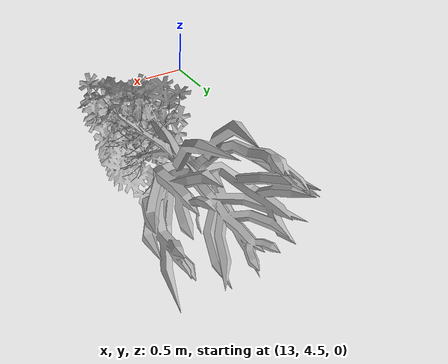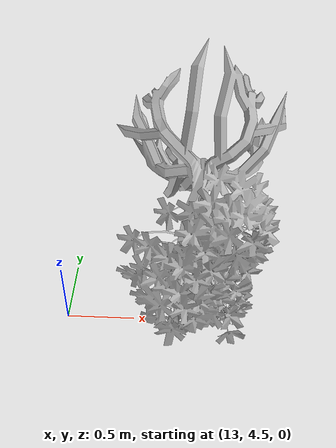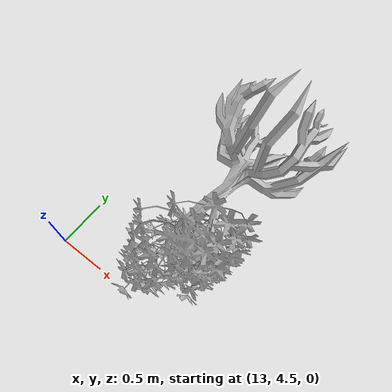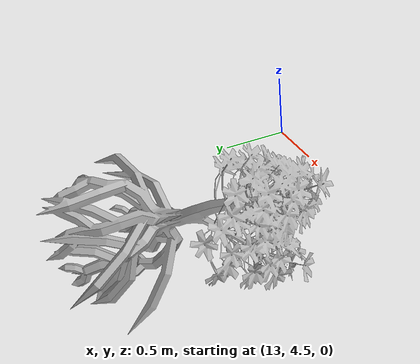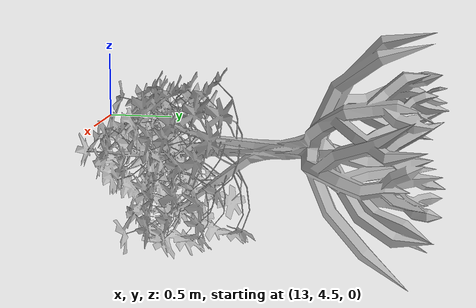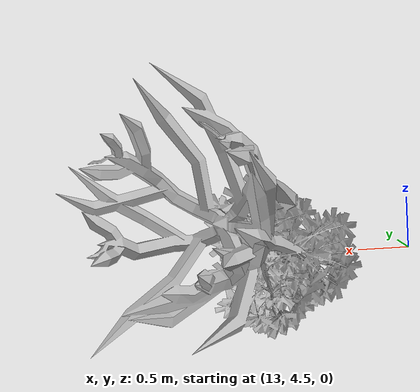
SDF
<?xml version="1.0" ?>
<sdf version="1.10">
  <model name="mangrove_imported">
    <pose>14 7 0 0 0 0</pose>
    <static>true</static>
    <link name="visual_only_link">
      <!-- Terrain at (14, 7) is approximately 0.03 m above world zero. -->
      <pose>0 0 0.03 1.5708 0 0</pose>
      <visual name="imported_mangrove_visual"><geometry><mesh><uri>meshes/Mangrovetree.glb</uri></mesh></geometry></visual>
    </link>
    <!-- The converted GLB mesh is the authoritative visual and collision geometry. -->
    <!-- A mesh collision is used so Gazebo physics and LiDAR can detect the tree shape. -->
    <link name="glb_collision_link">
      <pose>0 0 0.28 0 0 0</pose>
      <collision name="glb_mesh_collision">
        <geometry><mesh><uri>meshes/mangrovetree.obj</uri></mesh></geometry>
      </collision>
    </link>
  </model>
</sdf>
